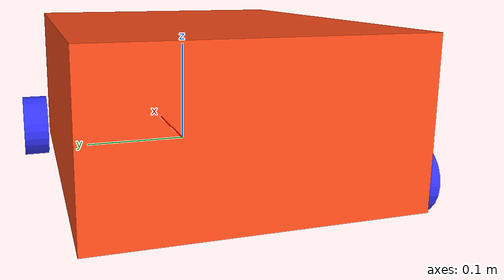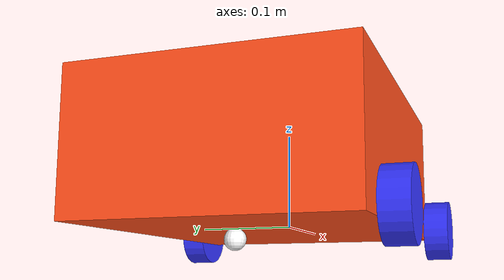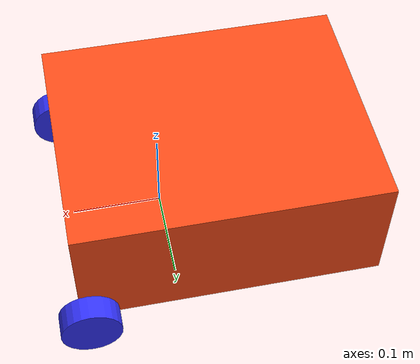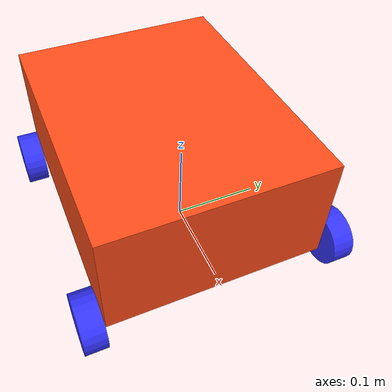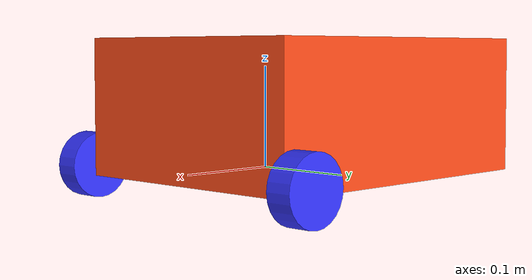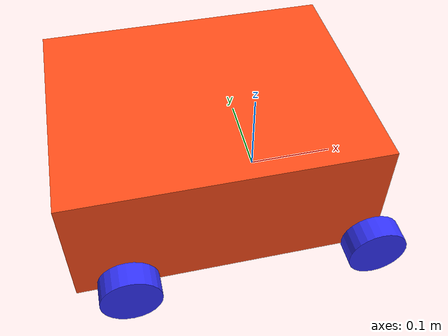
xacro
<?xml version="1.0"?>
<robot xmlns:xacro="http://www.ros.org/wiki/xacro" >

    <xacro:include filename="inertial_macros.xacro"/>

    <xacro:property name="chassis_length" value="0.335"/>
    <xacro:property name="chassis_width" value="0.265"/>
    <xacro:property name="chassis_height" value="0.138"/>
    <xacro:property name="chassis_mass" value="1.0"/>
    <xacro:property name="wheel_radius" value="0.033"/>
    <xacro:property name="wheel_thickness" value="0.026"/>
    <xacro:property name="wheel_mass" value="0.05"/>
    <xacro:property name="wheel_offset_x" value="0.226"/>
    <xacro:property name="wheel_offset_y" value="0.1485"/>
    <xacro:property name="wheel_offset_z" value="0.01"/>
    <xacro:property name="caster_wheel_radius" value="0.01"/>
    <xacro:property name="caster_wheel_mass" value="0.01"/>
    <xacro:property name="caster_wheel_offset_x" value="0.075"/>
    <xacro:property name="caster_wheel_offset_z" value="${wheel_offset_z - wheel_radius + caster_wheel_radius}"/>

    <material name="white">
        <color rgba="1 1 1 1" />
    </material>

    <material name="orange">
        <color rgba="1 0.3 0.1 1"/>
    </material>

    <material name="blue">
        <color rgba="0.2 0.2 1 1"/>
    </material>

    <material name="black">
        <color rgba="0 0 0 1"/>
    </material>

    <material name="red">
        <color rgba="1 0 0 1"/>
    </material>

    <!-- BASE LINK -->

    <link name="base_link">

    </link>

    <!-- BASE_FOOTPRINT LINK -->

    <joint name="base_footprint_joint" type="fixed">
        <parent link="base_link"/>
        <child link="base_footprint"/>
        <origin xyz="0 0 0" rpy="0 0 0"/>
    </joint>

    <link name="base_footprint">
    </link>

    <!-- CHASSIS LINK -->

    <joint name="chassis_joint" type="fixed">
        <parent link="base_link"/>
        <child link="chassis"/>
        <origin xyz="${-wheel_offset_x} 0 ${-wheel_offset_z}"/>
    </joint>

    <link name="chassis">
        <visual>
            <origin xyz="${chassis_length/2} 0 ${chassis_height/2}"/>
            <geometry>
                <box size="${chassis_length} ${chassis_width} ${chassis_height}"/>
            </geometry>
            <material name="orange"/>
        </visual>
        <collision>
            <origin xyz="${chassis_length/2} 0 ${chassis_height/2}"/>
            <geometry>
                <box size="${chassis_length} ${chassis_width} ${chassis_height}"/>
            </geometry>
        </collision>
        <xacro:inertial_box mass="0.5" x="${chassis_length}" y="${chassis_width}" z="${chassis_height}">
            <origin xyz="${chassis_length/2} 0 ${chassis_height/2}" rpy="0 0 0"/>
        </xacro:inertial_box>
    </link>

    <gazebo reference="chassis">
        <material>Gazebo/Orange</material>
    </gazebo>

    <!-- LEFT WHEEL LINK -->

    <joint name="left_wheel_joint" type="revolute">
        <parent link="base_link"/>
        <child link="left_wheel"/>
        <origin xyz="0.1 ${wheel_offset_y} 0" rpy="0 0 0" />
        <axis xyz="0 0 -1"/>
        <limit lower="-1.57" upper="1.57" velocity="100" effort="100" />
    </joint>

    <link name="left_wheel">
        <visual>
            <geometry>
                <cylinder radius="${wheel_radius}" length="${wheel_thickness}"/>
            </geometry>
            <material name="blue"/>
            <origin xyz="0 0 0" rpy="1.57 0 0"/>
        </visual>
        <collision>
            <geometry>
                <sphere radius="${wheel_radius}"/>
            </geometry>
        </collision>
        <xacro:inertial_cylinder mass="${wheel_mass}" length="${wheel_thickness}" radius="${wheel_radius}">

        </xacro:inertial_cylinder>
    </link>

    <gazebo reference="left_wheel">
        <material>Gazebo/Blue</material>
    </gazebo>

    <!-- RIGHT WHEEL LINK -->

    <joint name="right_wheel_joint" type="revolute">
        <parent link="base_link"/>
        <child link="right_wheel"/>
        <origin xyz="0.1 ${-wheel_offset_y} 0" rpy="0 0 0" />
        <axis xyz="0 0 -1"/>
        <limit lower="-1.57" upper="1.57" velocity="100" effort="100" />
    </joint>

    <link name="right_wheel">
        <visual>
            <geometry>
                <cylinder radius="${wheel_radius}" length="${wheel_thickness}"/>
            </geometry>
            <material name="blue"/>
            <origin xyz="0 0 0" rpy="1.57 0 0"/>
        </visual>
        <collision>
            <geometry>
                <sphere radius="${wheel_radius}"/>
            </geometry>
        </collision>
        <xacro:inertial_cylinder mass="${wheel_mass}" length="${wheel_thickness}" radius="${wheel_radius}">
        </xacro:inertial_cylinder>
    </link>

    <gazebo reference="right_wheel">
        <material>Gazebo/Blue</material>
    </gazebo>

    <!-- CASTER WHEEL LINK -->

    <joint name="caster_wheel_joint" type="fixed">
        <parent link="chassis"/>
        <child link="caster_wheel"/>
        <origin xyz="${caster_wheel_offset_x} 0 ${caster_wheel_offset_z}"/>
    </joint>

    <link name="caster_wheel">
        <visual>
            <geometry>
                <sphere radius="${caster_wheel_radius}"/>
            </geometry>
            <material name="white"/>
        </visual>
        <collision>
            <geometry>
                <sphere radius="${caster_wheel_radius}"/>
            </geometry>
        </collision>
        <xacro:inertial_sphere mass="${caster_wheel_mass}" radius="${caster_wheel_radius}">
            <origin xyz="0 0 0" rpy="0 0 0"/>
        </xacro:inertial_sphere>
    </link>

    <gazebo reference="caster_wheel">
        <material>Gazebo/White</material>
        <mu1 value="0.001"/>
        <mu2 value="0.001"/>
    </gazebo>

    <!-- Rear Left Wheel -->
    <link name="wheel_rear_left">
        <visual>
            <geometry>
                <cylinder length="${wheel_thickness}" radius="${wheel_radius}"/>
            </geometry>
            <material name="blue"/>
            <origin xyz="0 0 0" rpy="1.57 0 0"/>
        </visual>
        <collision>
            <geometry>
                <sphere radius="${wheel_radius}"/>
            </geometry>
        </collision>
        <xacro:inertial_cylinder mass="${wheel_mass}" length="${wheel_thickness}" radius="${wheel_radius}">

        </xacro:inertial_cylinder>
    </link>

    <gazebo reference="left_wheel">
        <material>Gazebo/Blue</material>
    </gazebo>

    <joint name="wheel_rear_left_joint" type="continuous">
        <parent link="base_link"/>
        <child link="wheel_rear_left"/>
        <origin xyz="-0.17 -${wheel_offset_y} 0" rpy="0 0 0"/>
        <axis xyz="0 1 0"/>
    </joint>

    <!-- Rear Right Wheel -->
    <link name="wheel_rear_right">
        <visual>
            <geometry>
                <cylinder length="${wheel_thickness}" radius="${wheel_radius}"/>
            </geometry>
            <material name="blue"/>
            <origin xyz="0 0 0" rpy="1.57 0 0"/>
        </visual>
        <collision>
            <geometry>
                <cylinder length="${wheel_thickness}" radius="${wheel_radius}"/>
            </geometry>
        </collision>
        <xacro:inertial_cylinder mass="${wheel_mass}" length="${wheel_thickness}" radius="${wheel_radius}">
        </xacro:inertial_cylinder>
    </link>

    <gazebo reference="right_wheel">
        <material>Gazebo/Blue</material>
    </gazebo>

    <joint name="wheel_rear_right_joint" type="continuous">
        <parent link="base_link"/>
        <child link="wheel_rear_right"/>
        <origin xyz="-0.17 -${wheel_offset_y} 0" rpy="0 0 0"/>
        <axis xyz="0 1 0"/>
    </joint>

</robot>
